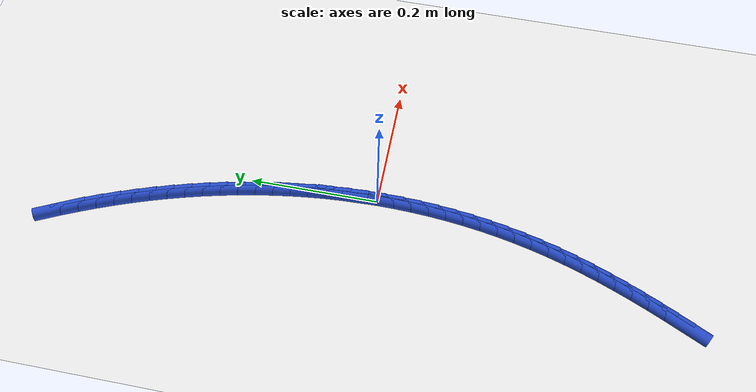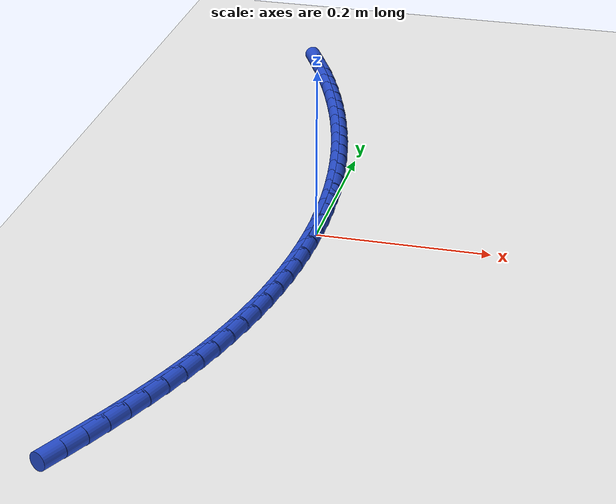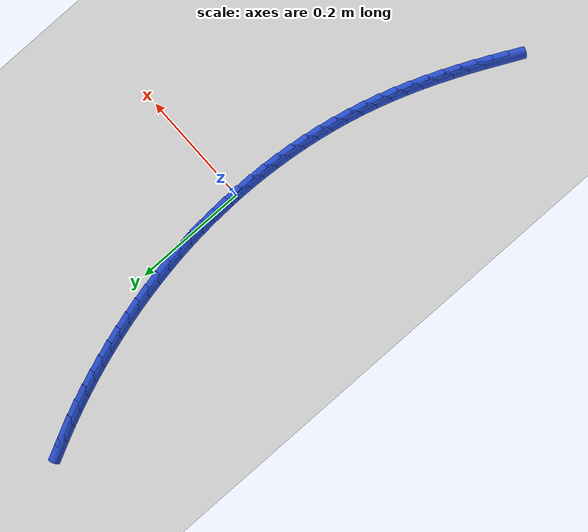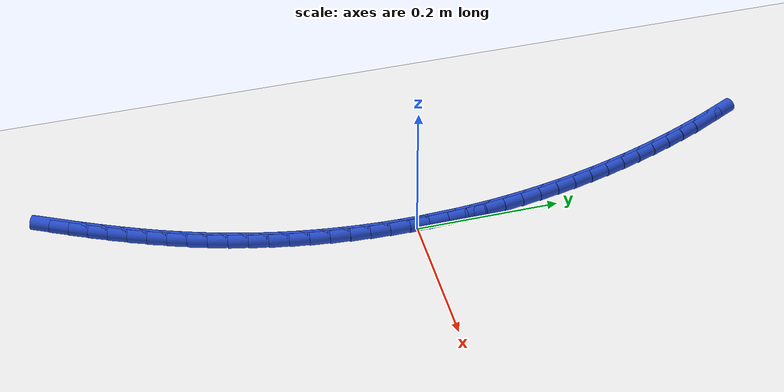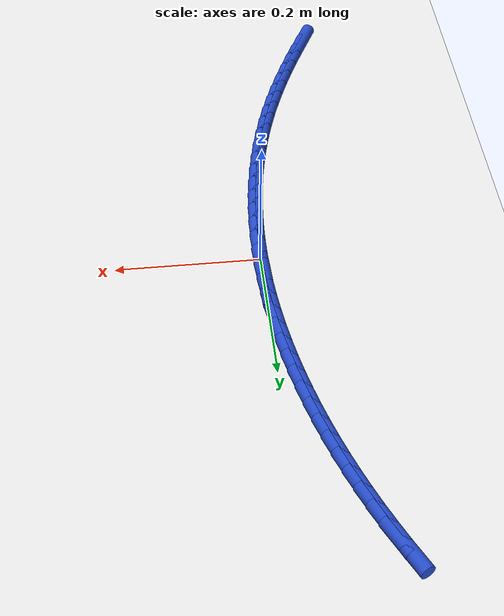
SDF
<sdf version="1.6">
 <world name="default">
  <model name="ground_plane">
   <static>1</static>
   <link name="link">
    <collision name="collision">
     <geometry><plane><normal>0 0 1</normal><size>100 100</size></plane></geometry>
     <surface><friction><ode><mu>100</mu><mu2>50</mu2></ode></friction></surface>
    </collision>
    <visual name="visual">
     <cast_shadows>0</cast_shadows>
     <geometry><plane><normal>0 0 1</normal><size>100 100</size></plane></geometry>
     <material>
      <script><uri>file://media/materials/scripts/gazebo.material</uri><name>Gazebo/WhiteGlow</name></script>
     </material>
    </visual>
   </link>
  </model>
  <model name="line">
   <link name="link_0">
    <pose>-1.1275702593849246e-17 -2.0816681711721685e-16 0.01 0 1.57 -1.552094868001441</pose>
    <collision name="collision">
     <geometry><cylinder><radius>0.01</radius><length>0.08</length></cylinder></geometry>
    </collision>
    <visual name="visual">
     <material>
      <script><name>Gazebo/Blue</name><uri>file://media/materials/scripts/gazebo.material</uri></script>
     </material>
     <geometry><cylinder><radius>0.01</radius><length>0.08</length></cylinder></geometry>
    </visual>
   </link>
   <link name="link_1">
    <pose>-0.0005097883931244422 0.027256106887827772 0.01 0 1.57 -1.5250872324449645</pose>
    <collision name="collision">
     <geometry><cylinder><radius>0.01</radius><length>0.08</length></cylinder></geometry>
    </collision>
    <visual name="visual">
     <material>
      <script><name>Gazebo/Blue</name><uri>file://media/materials/scripts/gazebo.material</uri></script>
     </material>
     <geometry><cylinder><radius>0.01</radius><length>0.08</length></cylinder></geometry>
    </visual>
   </link>
   <link name="link_2">
    <pose>-0.0017546198344868726 0.054470918017272996 0.01 0 1.57 -1.4984564545756962</pose>
    <collision name="collision">
     <geometry><cylinder><radius>0.01</radius><length>0.08</length></cylinder></geometry>
    </collision>
    <visual name="visual">
     <material>
      <script><name>Gazebo/Blue</name><uri>file://media/materials/scripts/gazebo.material</uri></script>
     </material>
     <geometry><cylinder><radius>0.01</radius><length>0.08</length></cylinder></geometry>
    </visual>
   </link>
   <link name="link_3">
    <pose>-0.003722848094361998 0.08163151033794203 0.01 0 1.57 -1.472200943007934</pose>
    <collision name="collision">
     <geometry><cylinder><radius>0.01</radius><length>0.08</length></cylinder></geometry>
    </collision>
    <visual name="visual">
     <material>
      <script><name>Gazebo/Blue</name><uri>file://media/materials/scripts/gazebo.material</uri></script>
     </material>
     <geometry><cylinder><radius>0.01</radius><length>0.08</length></cylinder></geometry>
    </visual>
   </link>
   <link name="link_4">
    <pose>-0.006402826943024513 0.10872496079944133 0.01 0 1.57 -1.4463170420218971</pose>
    <collision name="collision">
     <geometry><cylinder><radius>0.01</radius><length>0.08</length></cylinder></geometry>
    </collision>
    <visual name="visual">
     <material>
      <script><name>Gazebo/Blue</name><uri>file://media/materials/scripts/gazebo.material</uri></script>
     </material>
     <geometry><cylinder><radius>0.01</radius><length>0.08</length></cylinder></geometry>
    </visual>
   </link>
   <link name="link_5">
    <pose>-0.009782910150749113 0.1357383463513774 0.01 0 1.57 -1.4207991894194423</pose>
    <collision name="collision">
     <geometry><cylinder><radius>0.01</radius><length>0.08</length></cylinder></geometry>
    </collision>
    <visual name="visual">
     <material>
      <script><name>Gazebo/Blue</name><uri>file://media/materials/scripts/gazebo.material</uri></script>
     </material>
     <geometry><cylinder><radius>0.01</radius><length>0.08</length></cylinder></geometry>
    </visual>
   </link>
   <link name="link_6">
    <pose>-0.013851451487810498 0.16265874394335678 0.01 0 1.57 -1.3956400737274328</pose>
    <collision name="collision">
     <geometry><cylinder><radius>0.01</radius><length>0.08</length></cylinder></geometry>
    </collision>
    <visual name="visual">
     <material>
      <script><name>Gazebo/Blue</name><uri>file://media/materials/scripts/gazebo.material</uri></script>
     </material>
     <geometry><cylinder><radius>0.01</radius><length>0.08</length></cylinder></geometry>
    </visual>
   </link>
   <link name="link_7">
    <pose>-0.018596804724483357 0.18947323052498588 0.01 0 1.57 -1.3708307881304298</pose>
    <collision name="collision">
     <geometry><cylinder><radius>0.01</radius><length>0.08</length></cylinder></geometry>
    </collision>
    <visual name="visual">
     <material>
      <script><name>Gazebo/Blue</name><uri>file://media/materials/scripts/gazebo.material</uri></script>
     </material>
     <geometry><cylinder><radius>0.01</radius><length>0.08</length></cylinder></geometry>
    </visual>
   </link>
   <link name="link_8">
    <pose>-0.024007323631042393 0.21616888304587134 0.01 0 1.57 -1.346360978987845</pose>
    <collision name="collision">
     <geometry><cylinder><radius>0.01</radius><length>0.08</length></cylinder></geometry>
    </collision>
    <visual name="visual">
     <material>
      <script><name>Gazebo/Blue</name><uri>file://media/materials/scripts/gazebo.material</uri></script>
     </material>
     <geometry><cylinder><radius>0.01</radius><length>0.08</length></cylinder></geometry>
    </visual>
   </link>
   <link name="link_9">
    <pose>-0.030071361977762293 0.24273277845561952 0.01 0 1.57 -1.3222181247419766</pose>
    <collision name="collision">
     <geometry><cylinder><radius>0.01</radius><length>0.08</length></cylinder></geometry>
    </collision>
    <visual name="visual">
     <material>
      <script><name>Gazebo/Blue</name><uri>file://media/materials/scripts/gazebo.material</uri></script>
     </material>
     <geometry><cylinder><radius>0.01</radius><length>0.08</length></cylinder></geometry>
    </visual>
   </link>
   <link name="link_10">
    <pose>-0.03677728899681782 0.2691519590634196 0.01 0 1.57 -1.2983530634299068</pose>
    <collision name="collision">
     <geometry><cylinder><radius>0.01</radius><length>0.08</length></cylinder></geometry>
    </collision>
    <visual name="visual">
     <material>
      <script><name>Gazebo/Blue</name><uri>file://media/materials/scripts/gazebo.material</uri></script>
     </material>
     <geometry><cylinder><radius>0.01</radius><length>0.08</length></cylinder></geometry>
    </visual>
   </link>
   <link name="link_11">
    <pose>-0.044114105184688876 0.2954120529112052 0.01 0 1.57 -1.2746993457583078</pose>
    <collision name="collision">
     <geometry><cylinder><radius>0.01</radius><length>0.08</length></cylinder></geometry>
    </collision>
    <visual name="visual">
     <material>
      <script><name>Gazebo/Blue</name><uri>file://media/materials/scripts/gazebo.material</uri></script>
     </material>
     <geometry><cylinder><radius>0.01</radius><length>0.08</length></cylinder></geometry>
    </visual>
   </link>
   <link name="link_12">
    <pose>-0.052071648974059206 0.3214968107515941 0.01 0 1.57 -1.2512318086805811</pose>
    <collision name="collision">
     <geometry><cylinder><radius>0.01</radius><length>0.08</length></cylinder></geometry>
    </collision>
    <visual name="visual">
     <material>
      <script><name>Gazebo/Blue</name><uri>file://media/materials/scripts/gazebo.material</uri></script>
     </material>
     <geometry><cylinder><radius>0.01</radius><length>0.08</length></cylinder></geometry>
    </visual>
   </link>
   <link name="link_13">
    <pose>-0.06063981663602372 0.34738985375761167 0.01 0 1.57 -1.2279280655758262</pose>
    <collision name="collision">
     <geometry><cylinder><radius>0.01</radius><length>0.08</length></cylinder></geometry>
    </collision>
    <visual name="visual">
     <material>
      <script><name>Gazebo/Blue</name><uri>file://media/materials/scripts/gazebo.material</uri></script>
     </material>
     <geometry><cylinder><radius>0.01</radius><length>0.08</length></cylinder></geometry>
    </visual>
   </link>
   <link name="link_14">
    <pose>-0.06980850444167744 0.37307480310228397 0.01 0 1.57 -1.2047653316231555</pose>
    <collision name="collision">
     <geometry><cylinder><radius>0.01</radius><length>0.08</length></cylinder></geometry>
    </collision>
    <visual name="visual">
     <material>
      <script><name>Gazebo/Blue</name><uri>file://media/materials/scripts/gazebo.material</uri></script>
     </material>
     <geometry><cylinder><radius>0.01</radius><length>0.08</length></cylinder></geometry>
    </visual>
   </link>
   <link name="link_15">
    <pose>-0.07956760866211533 0.39853527995863636 0.01 0 1.57 -1.1817204668004173</pose>
    <collision name="collision">
     <geometry><cylinder><radius>0.01</radius><length>0.08</length></cylinder></geometry>
    </collision>
    <visual name="visual">
     <material>
      <script><name>Gazebo/Blue</name><uri>file://media/materials/scripts/gazebo.material</uri></script>
     </material>
     <geometry><cylinder><radius>0.01</radius><length>0.08</length></cylinder></geometry>
    </visual>
   </link>
   <link name="link_16">
    <pose>-0.08990702556843236 0.42375490549969463 0.01 0 1.57 -1.1587700111801744</pose>
    <collision name="collision">
     <geometry><cylinder><radius>0.01</radius><length>0.08</length></cylinder></geometry>
    </collision>
    <visual name="visual">
     <material>
      <script><name>Gazebo/Blue</name><uri>file://media/materials/scripts/gazebo.material</uri></script>
     </material>
     <geometry><cylinder><radius>0.01</radius><length>0.08</length></cylinder></geometry>
    </visual>
   </link>
   <link name="link_17">
    <pose>-0.10081665143172355 0.44871730089848466 0.01 0 1.57 -1.135890213580655</pose>
    <collision name="collision">
     <geometry><cylinder><radius>0.01</radius><length>0.08</length></cylinder></geometry>
    </collision>
    <visual name="visual">
     <material>
      <script><name>Gazebo/Blue</name><uri>file://media/materials/scripts/gazebo.material</uri></script>
     </material>
     <geometry><cylinder><radius>0.01</radius><length>0.08</length></cylinder></geometry>
    </visual>
   </link>
   <link name="link_18">
    <pose>-0.11228638252308387 0.4734060873280317 0.01 0 1.57 -1.113057054642454</pose>
    <collision name="collision">
     <geometry><cylinder><radius>0.01</radius><length>0.08</length></cylinder></geometry>
    </collision>
    <visual name="visual">
     <material>
      <script><name>Gazebo/Blue</name><uri>file://media/materials/scripts/gazebo.material</uri></script>
     </material>
     <geometry><cylinder><radius>0.01</radius><length>0.08</length></cylinder></geometry>
    </visual>
   </link>
   <link name="link_222">
    <pose>-0.11881962782664464 -0.47032879286593876 0.01 0 1.57 1.1140026117383341</pose>
    <collision name="collision">
     <geometry><cylinder><radius>0.01</radius><length>0.08</length></cylinder></geometry>
    </collision>
    <visual name="visual">
     <material>
      <script><name>Gazebo/Blue</name><uri>file://media/materials/scripts/gazebo.material</uri></script>
     </material>
     <geometry><cylinder><radius>0.01</radius><length>0.08</length></cylinder></geometry>
    </visual>
   </link>
   <link name="link_223">
    <pose>-0.10676128515072368 -0.445793124615458 0.01 0 1.57 1.1301146848194359</pose>
    <collision name="collision">
     <geometry><cylinder><radius>0.01</radius><length>0.08</length></cylinder></geometry>
    </collision>
    <visual name="visual">
     <material>
      <script><name>Gazebo/Blue</name><uri>file://media/materials/scripts/gazebo.material</uri></script>
     </material>
     <geometry><cylinder><radius>0.01</radius><length>0.08</length></cylinder></geometry>
    </visual>
   </link>
   <link name="link_224">
    <pose>-0.09512086142896131 -0.4211109994702466 0.01 0 1.57 1.1482891492782403</pose>
    <collision name="collision">
     <geometry><cylinder><radius>0.01</radius><length>0.08</length></cylinder></geometry>
    </collision>
    <visual name="visual">
     <material>
      <script><name>Gazebo/Blue</name><uri>file://media/materials/scripts/gazebo.material</uri></script>
     </material>
     <geometry><cylinder><radius>0.01</radius><length>0.08</length></cylinder></geometry>
    </visual>
   </link>
   <link name="link_225">
    <pose>-0.08395107784066944 -0.39626624086463114 0.01 0 1.57 1.1685396805928456</pose>
    <collision name="collision">
     <geometry><cylinder><radius>0.01</radius><length>0.08</length></cylinder></geometry>
    </collision>
    <visual name="visual">
     <material>
      <script><name>Gazebo/Blue</name><uri>file://media/materials/scripts/gazebo.material</uri></script>
     </material>
     <geometry><cylinder><radius>0.01</radius><length>0.08</length></cylinder></geometry>
    </visual>
   </link>
   <link name="link_226">
    <pose>-0.07330465556516041 -0.3712426722329389 0.01 0 1.57 1.1908740261491744</pose>
    <collision name="collision">
     <geometry><cylinder><radius>0.01</radius><length>0.08</length></cylinder></geometry>
    </collision>
    <visual name="visual">
     <material>
      <script><name>Gazebo/Blue</name><uri>file://media/materials/scripts/gazebo.material</uri></script>
     </material>
     <geometry><cylinder><radius>0.01</radius><length>0.08</length></cylinder></geometry>
    </visual>
   </link>
   <link name="link_227">
    <pose>-0.06323431578174643 -0.3460241170094972 0.01 0 1.57 1.2152913445809457</pose>
    <collision name="collision">
     <geometry><cylinder><radius>0.01</radius><length>0.08</length></cylinder></geometry>
    </collision>
    <visual name="visual">
     <material>
      <script><name>Gazebo/Blue</name><uri>file://media/materials/scripts/gazebo.material</uri></script>
     </material>
     <geometry><cylinder><radius>0.01</radius><length>0.08</length></cylinder></geometry>
    </visual>
   </link>
   <link name="link_228">
    <pose>-0.05379277966973983 -0.3205943986286333 0.01 0 1.57 1.2417792834194747</pose>
    <collision name="collision">
     <geometry><cylinder><radius>0.01</radius><length>0.08</length></cylinder></geometry>
    </collision>
    <visual name="visual">
     <material>
      <script><name>Gazebo/Blue</name><uri>file://media/materials/scripts/gazebo.material</uri></script>
     </material>
     <geometry><cylinder><radius>0.01</radius><length>0.08</length></cylinder></geometry>
    </visual>
   </link>
   <link name="link_229">
    <pose>-0.045032768408452876 -0.2949373405246748 0.01 0 1.57 1.270310875258813</pose>
    <collision name="collision">
     <geometry><cylinder><radius>0.01</radius><length>0.08</length></cylinder></geometry>
    </collision>
    <visual name="visual">
     <material>
      <script><name>Gazebo/Blue</name><uri>file://media/materials/scripts/gazebo.material</uri></script>
     </material>
     <geometry><cylinder><radius>0.01</radius><length>0.08</length></cylinder></geometry>
    </visual>
   </link>
   <link name="link_230">
    <pose>-0.03700700317719765 -0.26903676613194805 0.01 0 1.57 1.3007454886690053</pose>
    <collision name="collision">
     <geometry><cylinder><radius>0.01</radius><length>0.08</length></cylinder></geometry>
    </collision>
    <visual name="visual">
     <material>
      <script><name>Gazebo/Blue</name><uri>file://media/materials/scripts/gazebo.material</uri></script>
     </material>
     <geometry><cylinder><radius>0.01</radius><length>0.08</length></cylinder></geometry>
    </visual>
   </link>
   <link name="link_231">
    <pose>-0.02976599049633187 -0.2428782543751367 0.01 0 1.57 1.3316545204385442</pose>
    <collision name="collision">
     <geometry><cylinder><radius>0.01</radius><length>0.08</length></cylinder></geometry>
    </collision>
    <visual name="visual">
     <material>
      <script><name>Gazebo/Blue</name><uri>file://media/materials/scripts/gazebo.material</uri></script>
     </material>
     <geometry><cylinder><radius>0.01</radius><length>0.08</length></cylinder></geometry>
    </visual>
   </link>
   <link name="link_232">
    <pose>-0.023328151929585855 -0.21647281691282477 0.01 0 1.57 1.3620148503874554</pose>
    <collision name="collision">
     <geometry><cylinder><radius>0.01</radius><length>0.08</length></cylinder></geometry>
    </collision>
    <visual name="visual">
     <material>
      <script><name>Gazebo/Blue</name><uri>file://media/materials/scripts/gazebo.material</uri></script>
     </material>
     <geometry><cylinder><radius>0.01</radius><length>0.08</length></cylinder></geometry>
    </visual>
   </link>
   <link name="link_233">
    <pose>-0.017687737644634643 -0.1898506253074456 0.01 0 1.57 1.391842262405619</pose>
    <collision name="collision">
     <geometry><cylinder><radius>0.01</radius><length>0.08</length></cylinder></geometry>
    </collision>
    <visual name="visual">
     <material>
      <script><name>Gazebo/Blue</name><uri>file://media/materials/scripts/gazebo.material</uri></script>
     </material>
     <geometry><cylinder><radius>0.01</radius><length>0.08</length></cylinder></geometry>
    </visual>
   </link>
   <link name="link_234">
    <pose>-0.012838405765999308 -0.1630423204153812 0.01 0 1.57 1.4211801467304368</pose>
    <collision name="collision">
     <geometry><cylinder><radius>0.01</radius><length>0.08</length></cylinder></geometry>
    </collision>
    <visual name="visual">
     <material>
      <script><name>Gazebo/Blue</name><uri>file://media/materials/scripts/gazebo.material</uri></script>
     </material>
     <geometry><cylinder><radius>0.01</radius><length>0.08</length></cylinder></geometry>
    </visual>
   </link>
   <link name="link_235">
    <pose>-0.008773814418200906 -0.13607854309301365 0.01 0 1.57 1.450073522119819</pose>
    <collision name="collision">
     <geometry><cylinder><radius>0.01</radius><length>0.08</length></cylinder></geometry>
    </collision>
    <visual name="visual">
     <material>
      <script><name>Gazebo/Blue</name><uri>file://media/materials/scripts/gazebo.material</uri></script>
     </material>
     <geometry><cylinder><radius>0.01</radius><length>0.08</length></cylinder></geometry>
    </visual>
   </link>
   <link name="link_236">
    <pose>-0.005487621725760495 -0.10898993419672504 0.01 0 1.57 1.478568758160641</pose>
    <collision name="collision">
     <geometry><cylinder><radius>0.01</radius><length>0.08</length></cylinder></geometry>
    </collision>
    <visual name="visual">
     <material>
      <script><name>Gazebo/Blue</name><uri>file://media/materials/scripts/gazebo.material</uri></script>
     </material>
     <geometry><cylinder><radius>0.01</radius><length>0.08</length></cylinder></geometry>
    </visual>
   </link>
   <link name="link_237">
    <pose>-0.002973485813199139 -0.08180713458289741 0.01 0 1.57 1.5067133573202927</pose>
    <collision name="collision">
     <geometry><cylinder><radius>0.01</radius><length>0.08</length></cylinder></geometry>
    </collision>
    <visual name="visual">
     <material>
      <script><name>Gazebo/Blue</name><uri>file://media/materials/scripts/gazebo.material</uri></script>
     </material>
     <geometry><cylinder><radius>0.01</radius><length>0.08</length></cylinder></geometry>
    </visual>
   </link>
   <link name="link_238">
    <pose>-0.0012250648050378642 -0.05456078510791209 0.01 0 1.57 1.534555790981961</pose>
    <collision name="collision">
     <geometry><cylinder><radius>0.01</radius><length>0.08</length></cylinder></geometry>
    </collision>
    <visual name="visual">
     <material>
      <script><name>Gazebo/Blue</name><uri>file://media/materials/scripts/gazebo.material</uri></script>
     </material>
     <geometry><cylinder><radius>0.01</radius><length>0.08</length></cylinder></geometry>
    </visual>
   </link>
   <link name="link_239">
    <pose>-0.00023601682579781806 -0.027281526628152558 0.01 0 1.57 1.562145383567081</pose>
    <collision name="collision">
     <geometry><cylinder><radius>0.01</radius><length>0.08</length></cylinder></geometry>
    </collision>
    <visual name="visual">
     <material>
      <script><name>Gazebo/Blue</name><uri>file://media/materials/scripts/gazebo.material</uri></script>
     </material>
     <geometry><cylinder><radius>0.01</radius><length>0.08</length></cylinder></geometry>
    </visual>
   </link>
   <link name="link_240">
    <pose>-1.1275702593849246e-17 -2.3592239273284576e-16 0.01 0 1.57 -1.5520604146971668</pose>
    <collision name="collision">
     <geometry><cylinder><radius>0.01</radius><length>0.08</length></cylinder></geometry>
    </collision>
    <visual name="visual">
     <material>
      <script><name>Gazebo/Blue</name><uri>file://media/materials/scripts/gazebo.material</uri></script>
     </material>
     <geometry><cylinder><radius>0.01</radius><length>0.08</length></cylinder></geometry>
    </visual>
   </link>
   <link name="link_241">
    <pose>-0.0005106724521655023 0.027253153920162865 0.01 0 1.57 -1.5248254505299612</pose>
    <collision name="collision">
     <geometry><cylinder><radius>0.01</radius><length>0.08</length></cylinder></geometry>
    </collision>
    <visual name="visual">
     <material>
      <script><name>Gazebo/Blue</name><uri>file://media/materials/scripts/gazebo.material</uri></script>
     </material>
     <geometry><cylinder><radius>0.01</radius><length>0.08</length></cylinder></geometry>
    </visual>
   </link>
   <link name="link_242">
    <pose>-0.0017616923068153488 0.0544472942759547 0.01 0 1.57 -1.5384516907399748</pose>
    <collision name="collision">
     <geometry><cylinder><radius>0.01</radius><length>0.08</length></cylinder></geometry>
    </collision>
    <visual name="visual">
     <material>
      <script><name>Gazebo/Blue</name><uri>file://media/materials/scripts/gazebo.material</uri></script>
     </material>
     <geometry><cylinder><radius>0.01</radius><length>0.08</length></cylinder></geometry>
    </visual>
   </link>
  </model>
 </world>
</sdf>
